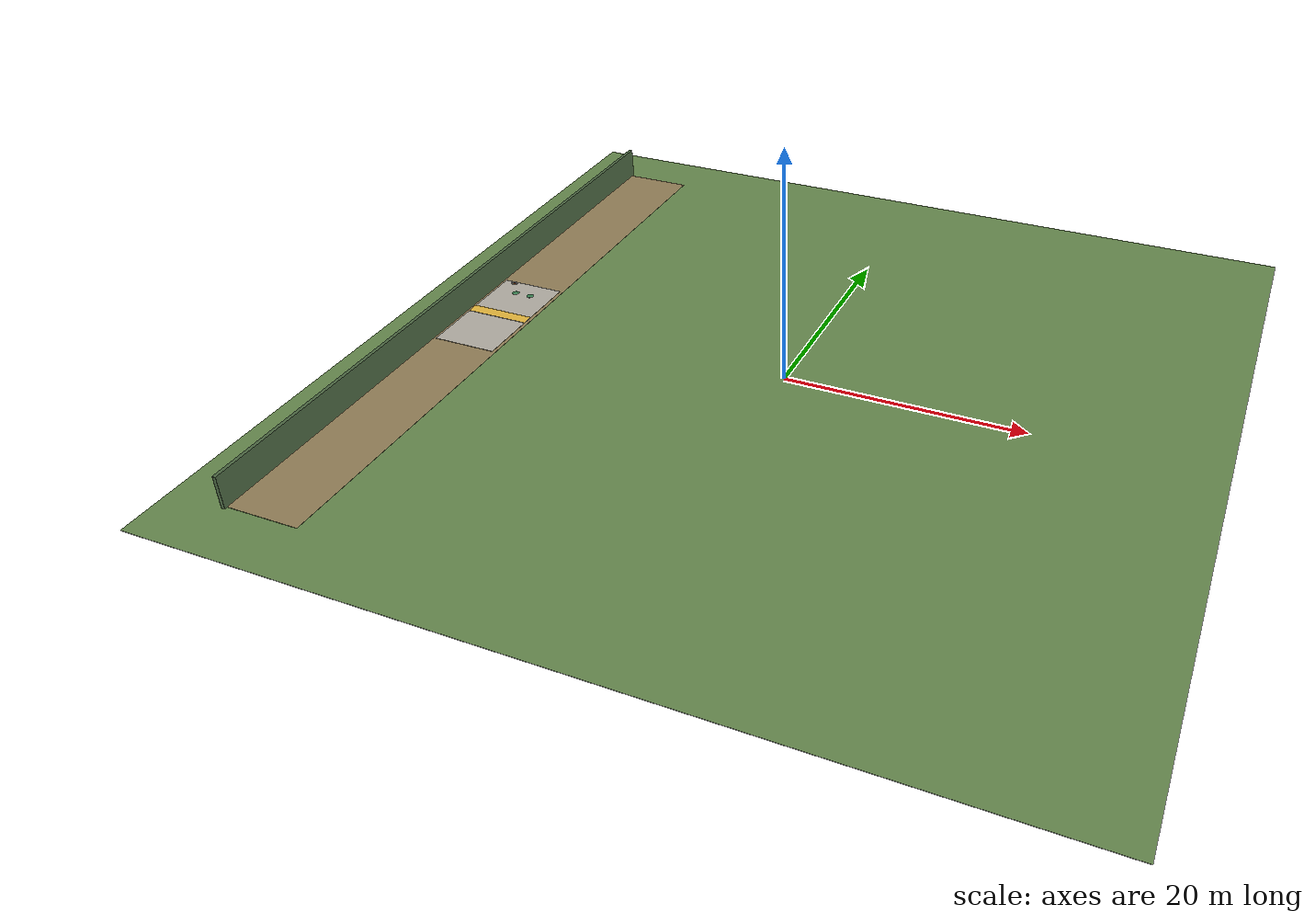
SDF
<sdf version="1.7">
 <world name="zx2026_forest">
  <include><uri>model://sun</uri></include>
  <model name="ground_plane">
   <static>true</static>
   <pose>0.00 0.00 -0.01 0 0 0</pose>
   <link name="link">
    <collision name="col"><geometry><box><size>70.00 70.00 0.02</size></box></geometry></collision>
    <visual name="vis">
     <geometry><box><size>70.00 70.00 0.02</size></box></geometry>
     <material>
      <ambient>0.42 0.56 0.32 1.00</ambient>
      <diffuse>0.42 0.56 0.32 1.00</diffuse>
      <specular>0.2 0.2 0.2 1</specular>
     </material>
    </visual>
   </link>
  </model>
  <model name="clearing_dirt">
   <static>true</static>
   <pose>-27.00 0.00 0.01 0 0 0</pose>
   <link name="link">
    <collision name="col"><geometry><box><size>6.20 60.40 0.02</size></box></geometry></collision>
    <visual name="vis">
     <geometry><box><size>6.20 60.40 0.02</size></box></geometry>
     <material>
      <ambient>0.60 0.52 0.36 1.00</ambient>
      <diffuse>0.60 0.52 0.36 1.00</diffuse>
      <specular>0.2 0.2 0.2 1</specular>
     </material>
    </visual>
   </link>
  </model>
  <model name="takeoff_pad">
   <static>true</static>
   <pose>-27.00 0.00 0.03 0 0 0</pose>
   <link name="link">
    <collision name="col"><geometry><box><size>5.60 11.00 0.02</size></box></geometry></collision>
    <visual name="vis">
     <geometry><box><size>5.60 11.00 0.02</size></box></geometry>
     <material>
      <ambient>0.73 0.71 0.67 1.00</ambient>
      <diffuse>0.73 0.71 0.67 1.00</diffuse>
      <specular>0.2 0.2 0.2 1</specular>
     </material>
    </visual>
   </link>
  </model>
  <model name="takeoff_band">
   <static>true</static>
   <pose>-27.00 0.00 0.06 0 0 0</pose>
   <link name="link">
    <collision name="col"><geometry><box><size>5.60 1.00 0.02</size></box></geometry></collision>
    <visual name="vis">
     <geometry><box><size>5.60 1.00 0.02</size></box></geometry>
     <material>
      <ambient>0.94 0.75 0.25 1.00</ambient>
      <diffuse>0.94 0.75 0.25 1.00</diffuse>
      <specular>0.2 0.2 0.2 1</specular>
     </material>
    </visual>
   </link>
  </model>
  <model name="fence_w">
   <static>true</static>
   <pose>-30.15 0.00 1.40 0 0 0</pose>
   <link name="link">
    <collision name="col"><geometry><box><size>0.30 60.90 2.80</size></box></geometry></collision>
    <visual name="vis">
     <geometry><box><size>0.30 60.90 2.80</size></box></geometry>
     <material>
      <ambient>0.31 0.42 0.27 1.00</ambient>
      <diffuse>0.31 0.42 0.27 1.00</diffuse>
      <specular>0.2 0.2 0.2 1</specular>
     </material>
    </visual>
   </link>
  </model>
  <model name="pad_3">
   <static>true</static>
   <pose>-27.75 3.75 0.025 0 0 0</pose>
   <link name="pad">
    <collision name="col">
     <geometry><cylinder><radius>0.3</radius><length>0.05</length></cylinder></geometry>
    </collision>
    <visual name="vis">
     <geometry><cylinder><radius>0.3</radius><length>0.05</length></cylinder></geometry>
     <material>
      <ambient>0.25 0.55 0.35 1.00</ambient>
      <diffuse>0.25 0.55 0.35 1.00</diffuse>
      <specular>0.2 0.2 0.2 1</specular>
     </material>
    </visual>
   </link>
  </model>
  <model name="pad_4">
   <static>true</static>
   <pose>-26.25 3.75 0.025 0 0 0</pose>
   <link name="pad">
    <collision name="col">
     <geometry><cylinder><radius>0.3</radius><length>0.05</length></cylinder></geometry>
    </collision>
    <visual name="vis">
     <geometry><cylinder><radius>0.3</radius><length>0.05</length></cylinder></geometry>
     <material>
      <ambient>0.25 0.55 0.35 1.00</ambient>
      <diffuse>0.25 0.55 0.35 1.00</diffuse>
      <specular>0.2 0.2 0.2 1</specular>
     </material>
    </visual>
   </link>
  </model>
  <model name="drone_3">
   <pose>-27.75 3.75 1.0 0 0 0</pose>
   <link name="base_link">
    <inertial>
     <mass>2.0</mass>
     <inertia><ixx>0.04833</ixx><iyy>0.04833</iyy><izz>0.08333</izz><ixy>0</ixy><ixz>0</ixz><iyz>0</iyz></inertia>
    </inertial>
    <collision name="col"><geometry><box><size>0.5 0.5 0.2</size></box></geometry></collision>
    <visual name="chassis">
     <geometry><box><size>0.16 0.16 0.05</size></box></geometry>
     <material>
      <ambient>0.95 0.65 0.15 1.00</ambient>
      <diffuse>0.95 0.65 0.15 1.00</diffuse>
      <specular>0.2 0.2 0.2 1</specular>
     </material>
    </visual>
    <visual name="top">
     <pose>0.000 0.000 0.033 0 0 0.000</pose>
     <geometry><box><size>0.09 0.09 0.015</size></box></geometry>
     <material>
      <ambient>0.16 0.16 0.18 1.00</ambient>
      <diffuse>0.16 0.16 0.18 1.00</diffuse>
      <specular>0.2 0.2 0.2 1</specular>
     </material>
    </visual>
    <visual name="nose">
     <pose>0.085 0.000 0.010 0 0 0.000</pose>
     <geometry><box><size>0.03 0.03 0.035</size></box></geometry>
     <material>
      <ambient>0.95 0.25 0.20 1.00</ambient>
      <diffuse>0.95 0.25 0.20 1.00</diffuse>
      <specular>0.2 0.2 0.2 1</specular>
     </material>
    </visual>
    <visual name="arm0">
     <pose>0.120 0.000 0.010 0 0 0.000</pose>
     <geometry><box><size>0.24 0.024 0.016</size></box></geometry>
     <material>
      <ambient>0.24 0.24 0.26 1.00</ambient>
      <diffuse>0.24 0.24 0.26 1.00</diffuse>
      <specular>0.2 0.2 0.2 1</specular>
     </material>
    </visual>
    <visual name="motor0">
     <pose>0.240 0.000 0.032 0 0 0.000</pose>
     <geometry><cylinder><radius>0.032</radius><length>0.03</length></cylinder></geometry>
     <material>
      <ambient>0.33 0.33 0.35 1.00</ambient>
      <diffuse>0.33 0.33 0.35 1.00</diffuse>
      <specular>0.2 0.2 0.2 1</specular>
     </material>
    </visual>
    <visual name="prop0">
     <pose>0.240 0.000 0.062 0 0 0.000</pose>
     <geometry><cylinder><radius>0.10</radius><length>0.006</length></cylinder></geometry>
     <material>
      <ambient>0.82 0.82 0.84 0.55</ambient>
      <diffuse>0.82 0.82 0.84 0.55</diffuse>
      <specular>0.2 0.2 0.2 1</specular>
     </material>
    </visual>
    <visual name="arm1">
     <pose>-0.120 0.000 0.010 0 0 0.000</pose>
     <geometry><box><size>0.24 0.024 0.016</size></box></geometry>
     <material>
      <ambient>0.24 0.24 0.26 1.00</ambient>
      <diffuse>0.24 0.24 0.26 1.00</diffuse>
      <specular>0.2 0.2 0.2 1</specular>
     </material>
    </visual>
    <visual name="motor1">
     <pose>-0.240 0.000 0.032 0 0 0.000</pose>
     <geometry><cylinder><radius>0.032</radius><length>0.03</length></cylinder></geometry>
     <material>
      <ambient>0.33 0.33 0.35 1.00</ambient>
      <diffuse>0.33 0.33 0.35 1.00</diffuse>
      <specular>0.2 0.2 0.2 1</specular>
     </material>
    </visual>
    <visual name="prop1">
     <pose>-0.240 0.000 0.062 0 0 0.000</pose>
     <geometry><cylinder><radius>0.10</radius><length>0.006</length></cylinder></geometry>
     <material>
      <ambient>0.82 0.82 0.84 0.55</ambient>
      <diffuse>0.82 0.82 0.84 0.55</diffuse>
      <specular>0.2 0.2 0.2 1</specular>
     </material>
    </visual>
    <visual name="arm2">
     <pose>0.000 0.120 0.010 0 0 0.000</pose>
     <geometry><box><size>0.024 0.24 0.016</size></box></geometry>
     <material>
      <ambient>0.24 0.24 0.26 1.00</ambient>
      <diffuse>0.24 0.24 0.26 1.00</diffuse>
      <specular>0.2 0.2 0.2 1</specular>
     </material>
    </visual>
    <visual name="motor2">
     <pose>0.000 0.240 0.032 0 0 0.000</pose>
     <geometry><cylinder><radius>0.032</radius><length>0.03</length></cylinder></geometry>
     <material>
      <ambient>0.33 0.33 0.35 1.00</ambient>
      <diffuse>0.33 0.33 0.35 1.00</diffuse>
      <specular>0.2 0.2 0.2 1</specular>
     </material>
    </visual>
    <visual name="prop2">
     <pose>0.000 0.240 0.062 0 0 0.000</pose>
     <geometry><cylinder><radius>0.10</radius><length>0.006</length></cylinder></geometry>
     <material>
      <ambient>0.82 0.82 0.84 0.55</ambient>
      <diffuse>0.82 0.82 0.84 0.55</diffuse>
      <specular>0.2 0.2 0.2 1</specular>
     </material>
    </visual>
    <visual name="arm3">
     <pose>0.000 -0.120 0.010 0 0 0.000</pose>
     <geometry><box><size>0.024 0.24 0.016</size></box></geometry>
     <material>
      <ambient>0.24 0.24 0.26 1.00</ambient>
      <diffuse>0.24 0.24 0.26 1.00</diffuse>
      <specular>0.2 0.2 0.2 1</specular>
     </material>
    </visual>
    <visual name="motor3">
     <pose>0.000 -0.240 0.032 0 0 0.000</pose>
     <geometry><cylinder><radius>0.032</radius><length>0.03</length></cylinder></geometry>
     <material>
      <ambient>0.33 0.33 0.35 1.00</ambient>
      <diffuse>0.33 0.33 0.35 1.00</diffuse>
      <specular>0.2 0.2 0.2 1</specular>
     </material>
    </visual>
    <visual name="prop3">
     <pose>0.000 -0.240 0.062 0 0 0.000</pose>
     <geometry><cylinder><radius>0.10</radius><length>0.006</length></cylinder></geometry>
     <material>
      <ambient>0.82 0.82 0.84 0.55</ambient>
      <diffuse>0.82 0.82 0.84 0.55</diffuse>
      <specular>0.2 0.2 0.2 1</specular>
     </material>
    </visual>
   </link>
   <plugin name="drone_vel_3" filename="libdrone_vel_plugin.so">
    <drone_id>3</drone_id>
    <kp>3.0</kp>
    <g>9.81</g>
   </plugin>
  </model>
 </world>
</sdf>
